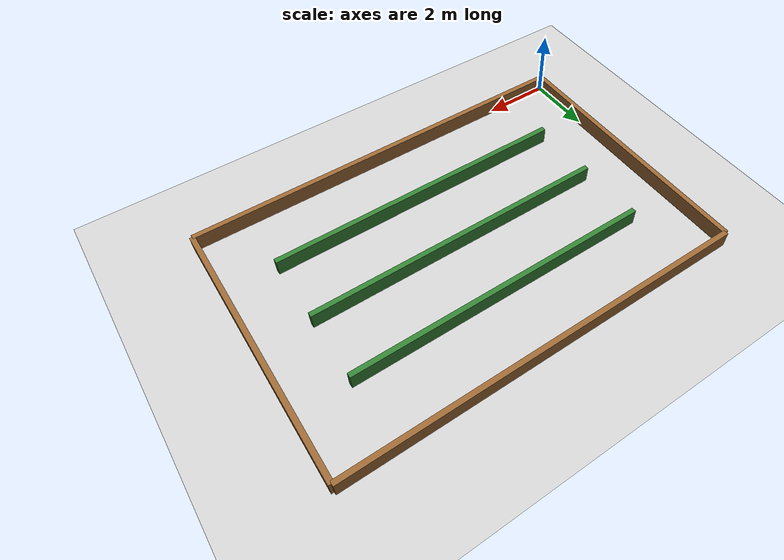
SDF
<?xml version="1.0"?>
<sdf version="1.6">
  <world name="orchard">

    <!-- Physics -->
    <physics type="ode">
      <real_time_update_rate>1000.0</real_time_update_rate>
      <max_step_size>0.001</max_step_size>
      <real_time_factor>1</real_time_factor>
    </physics>

    <!-- Sun -->
    <light name="sun" type="directional">
      <cast_shadows>true</cast_shadows>
      <pose>0 0 10 0 0 0</pose>
      <diffuse>0.8 0.8 0.8 1</diffuse>
      <specular>0.2 0.2 0.2 1</specular>
      <attenuation>
        <range>1000</range>
        <constant>0.9</constant>
        <linear>0.01</linear>
        <quadratic>0.001</quadratic>
      </attenuation>
      <direction>-0.5 0.1 -0.9</direction>
    </light>

    <!-- Ground plane -->
    <include>
      <uri>model://ground_plane</uri>
    </include>

    <!-- ===== Outer walls ===== -->

    <!-- South wall: y=0, full width 12m -->
    <model name="wall_south">
      <static>true</static>
      <pose>6.0 0.0 0.25 0 0 0</pose>
      <link name="link">
        <collision name="collision">
          <geometry><box><size>12.0 0.15 0.5</size></box></geometry>
        </collision>
        <visual name="visual">
          <geometry><box><size>12.0 0.15 0.5</size></box></geometry>
          <material><ambient>0.6 0.4 0.2 1</ambient></material>
        </visual>
      </link>
    </model>

    <!-- North wall: y=8, full width 12m -->
    <model name="wall_north">
      <static>true</static>
      <pose>6.0 8.0 0.25 0 0 0</pose>
      <link name="link">
        <collision name="collision">
          <geometry><box><size>12.0 0.15 0.5</size></box></geometry>
        </collision>
        <visual name="visual">
          <geometry><box><size>12.0 0.15 0.5</size></box></geometry>
          <material><ambient>0.6 0.4 0.2 1</ambient></material>
        </visual>
      </link>
    </model>

    <!-- West wall: x=0, full height 8m (size: width=0.15 along x, length=8 along y) -->
    <model name="wall_west">
      <static>true</static>
      <pose>0.0 4.0 0.25 0 0 0</pose>
      <link name="link">
        <collision name="collision">
          <geometry><box><size>0.15 8.0 0.5</size></box></geometry>
        </collision>
        <visual name="visual">
          <geometry><box><size>0.15 8.0 0.5</size></box></geometry>
          <material><ambient>0.6 0.4 0.2 1</ambient></material>
        </visual>
      </link>
    </model>

    <!-- East wall: x=12, full height 8m -->
    <model name="wall_east">
      <static>true</static>
      <pose>12.0 4.0 0.25 0 0 0</pose>
      <link name="link">
        <collision name="collision">
          <geometry><box><size>0.15 8.0 0.5</size></box></geometry>
        </collision>
        <visual name="visual">
          <geometry><box><size>0.15 8.0 0.5</size></box></geometry>
          <material><ambient>0.6 0.4 0.2 1</ambient></material>
        </visual>
      </link>
    </model>

    <!-- ===== Row walls (orchard rows) ===== -->
    <!-- Length 9m along x, centered at x=6.0, spanning x=1.5 to x=10.5 -->
    <!-- Side corridors: x=0~1.5 (west) and x=10.5~12 (east) -->

    <!-- Row wall 1: y=6 -->
    <model name="row_wall_1">
      <static>true</static>
      <pose>6.0 6.0 0.25 0 0 0</pose>
      <link name="link">
        <collision name="collision">
          <geometry><box><size>9.0 0.15 0.5</size></box></geometry>
        </collision>
        <visual name="visual">
          <geometry><box><size>9.0 0.15 0.5</size></box></geometry>
          <material><ambient>0.2 0.5 0.2 1</ambient></material>
        </visual>
      </link>
    </model>

    <!-- Row wall 2: y=4 -->
    <model name="row_wall_2">
      <static>true</static>
      <pose>6.0 4.0 0.25 0 0 0</pose>
      <link name="link">
        <collision name="collision">
          <geometry><box><size>9.0 0.15 0.5</size></box></geometry>
        </collision>
        <visual name="visual">
          <geometry><box><size>9.0 0.15 0.5</size></box></geometry>
          <material><ambient>0.2 0.5 0.2 1</ambient></material>
        </visual>
      </link>
    </model>

    <!-- Row wall 3: y=2 -->
    <model name="row_wall_3">
      <static>true</static>
      <pose>6.0 2.0 0.25 0 0 0</pose>
      <link name="link">
        <collision name="collision">
          <geometry><box><size>9.0 0.15 0.5</size></box></geometry>
        </collision>
        <visual name="visual">
          <geometry><box><size>9.0 0.15 0.5</size></box></geometry>
          <material><ambient>0.2 0.5 0.2 1</ambient></material>
        </visual>
      </link>
    </model>

  </world>
</sdf>
